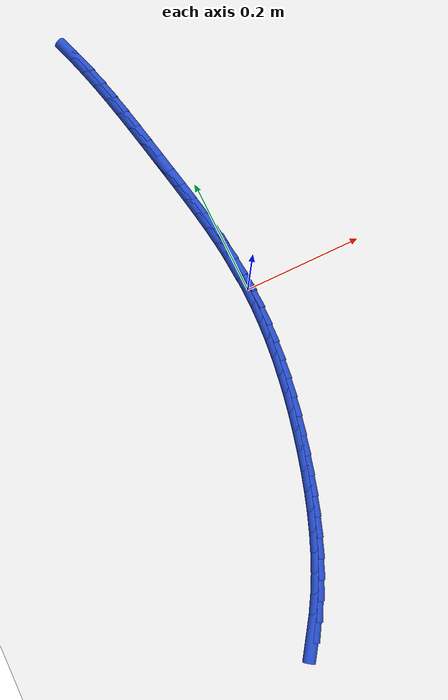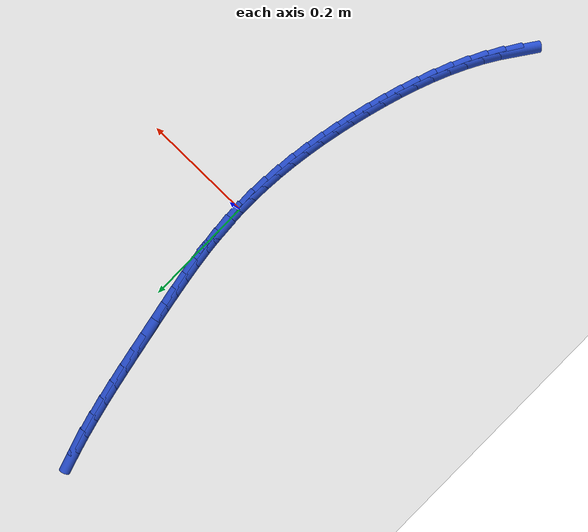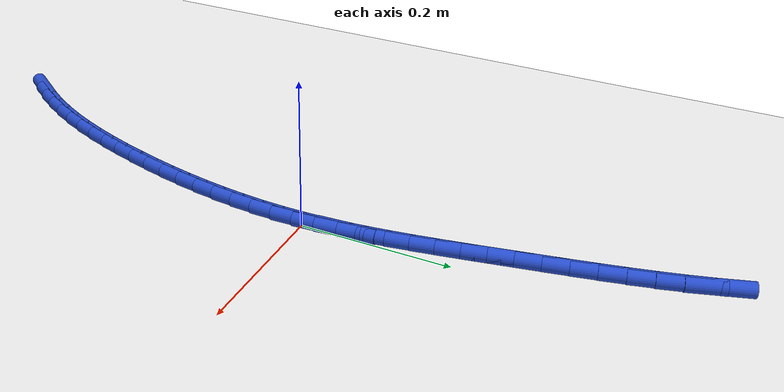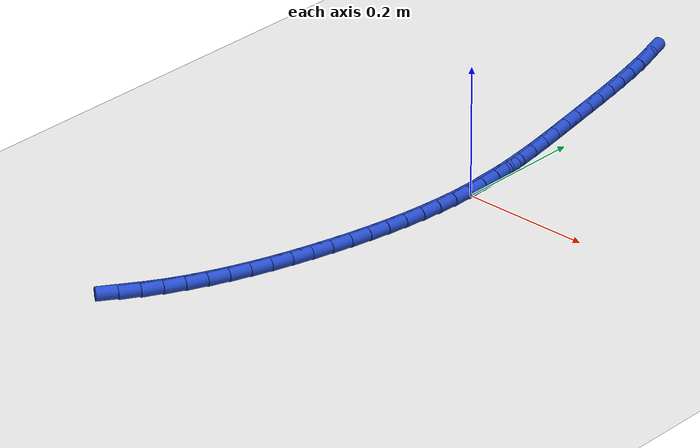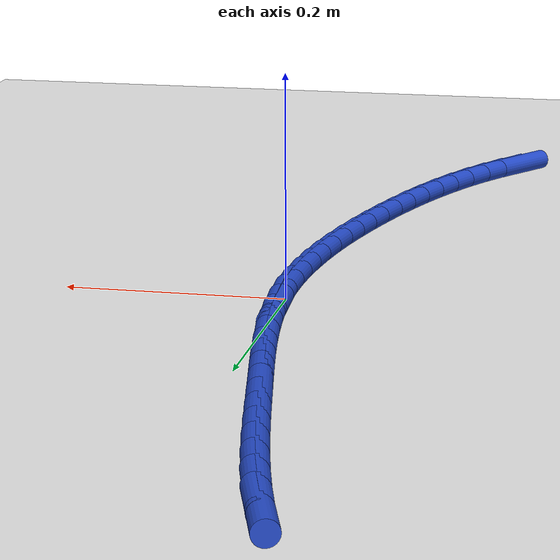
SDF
<sdf version="1.6">
 <world name="default">
  <model name="ground_plane">
   <static>1</static>
   <link name="link">
    <collision name="collision">
     <geometry><plane><normal>0 0 1</normal><size>100 100</size></plane></geometry>
     <surface><friction><ode><mu>100</mu><mu2>50</mu2></ode></friction></surface>
    </collision>
    <visual name="visual">
     <cast_shadows>0</cast_shadows>
     <geometry><plane><normal>0 0 1</normal><size>100 100</size></plane></geometry>
     <material>
      <script><uri>file://media/materials/scripts/gazebo.material</uri><name>Gazebo/WhiteGlow</name></script>
     </material>
    </visual>
   </link>
  </model>
  <model name="line">
   <link name="link_0">
    <pose>8.673617379884035e-18 6.938893903907228e-17 0.01 0 1.57 -1.534834732647551</pose>
    <collision name="collision">
     <geometry><cylinder><radius>0.01</radius><length>0.08</length></cylinder></geometry>
    </collision>
    <visual name="visual">
     <material>
      <script><name>Gazebo/Blue</name><uri>file://media/materials/scripts/gazebo.material</uri></script>
     </material>
     <geometry><cylinder><radius>0.01</radius><length>0.08</length></cylinder></geometry>
    </visual>
   </link>
   <link name="link_1">
    <pose>-0.001085270482683053 0.030165587233258163 0.01 0 1.57 -1.4984836230928305</pose>
    <collision name="collision">
     <geometry><cylinder><radius>0.01</radius><length>0.08</length></cylinder></geometry>
    </collision>
    <visual name="visual">
     <material>
      <script><name>Gazebo/Blue</name><uri>file://media/materials/scripts/gazebo.material</uri></script>
     </material>
     <geometry><cylinder><radius>0.01</radius><length>0.08</length></cylinder></geometry>
    </visual>
   </link>
   <link name="link_2">
    <pose>-0.003266642161739448 0.060278804111640286 0.01 0 1.57 -1.4668365130238021</pose>
    <collision name="collision">
     <geometry><cylinder><radius>0.01</radius><length>0.08</length></cylinder></geometry>
    </collision>
    <visual name="visual">
     <material>
      <script><name>Gazebo/Blue</name><uri>file://media/materials/scripts/gazebo.material</uri></script>
     </material>
     <geometry><cylinder><radius>0.01</radius><length>0.08</length></cylinder></geometry>
    </visual>
   </link>
   <link name="link_3">
    <pose>-0.006407655895817889 0.0903836091083243 0.01 0 1.57 -1.4400223874380829</pose>
    <collision name="collision">
     <geometry><cylinder><radius>0.01</radius><length>0.08</length></cylinder></geometry>
    </collision>
    <visual name="visual">
     <material>
      <script><name>Gazebo/Blue</name><uri>file://media/materials/scripts/gazebo.material</uri></script>
     </material>
     <geometry><cylinder><radius>0.01</radius><length>0.08</length></cylinder></geometry>
    </visual>
   </link>
   <link name="link_4">
    <pose>-0.010371852543567074 0.12052396069648796 0.01 0 1.57 -1.4180916667990704</pose>
    <collision name="collision">
     <geometry><cylinder><radius>0.01</radius><length>0.08</length></cylinder></geometry>
    </collision>
    <visual name="visual">
     <material>
      <script><name>Gazebo/Blue</name><uri>file://media/materials/scripts/gazebo.material</uri></script>
     </material>
     <geometry><cylinder><radius>0.01</radius><length>0.08</length></cylinder></geometry>
    </visual>
   </link>
   <link name="link_5">
    <pose>-0.015022772963635717 0.15074381734930922 0.01 0 1.57 -1.4010349243635654</pose>
    <collision name="collision">
     <geometry><cylinder><radius>0.01</radius><length>0.08</length></cylinder></geometry>
    </collision>
    <visual name="visual">
     <material>
      <script><name>Gazebo/Blue</name><uri>file://media/materials/scripts/gazebo.material</uri></script>
     </material>
     <geometry><cylinder><radius>0.01</radius><length>0.08</length></cylinder></geometry>
    </visual>
   </link>
   <link name="link_6">
    <pose>-0.02022395801467251 0.18108713753996575 0.01 0 1.57 -1.388799495935072</pose>
    <collision name="collision">
     <geometry><cylinder><radius>0.01</radius><length>0.08</length></cylinder></geometry>
    </collision>
    <visual name="visual">
     <material>
      <script><name>Gazebo/Blue</name><uri>file://media/materials/scripts/gazebo.material</uri></script>
     </material>
     <geometry><cylinder><radius>0.01</radius><length>0.08</length></cylinder></geometry>
    </visual>
   </link>
   <link name="link_7">
    <pose>-0.025838948555326157 0.2115978797416354 0.01 0 1.57 -1.3813028904055904</pose>
    <collision name="collision">
     <geometry><cylinder><radius>0.01</radius><length>0.08</length></cylinder></geometry>
    </collision>
    <visual name="visual">
     <material>
      <script><name>Gazebo/Blue</name><uri>file://media/materials/scripts/gazebo.material</uri></script>
     </material>
     <geometry><cylinder><radius>0.01</radius><length>0.08</length></cylinder></geometry>
    </visual>
   </link>
   <link name="link_8">
    <pose>-0.03173128544424536 0.24232000242749607 0.01 0 1.57 -1.37844051123567</pose>
    <collision name="collision">
     <geometry><cylinder><radius>0.01</radius><length>0.08</length></cylinder></geometry>
    </collision>
    <visual name="visual">
     <material>
      <script><name>Gazebo/Blue</name><uri>file://media/materials/scripts/gazebo.material</uri></script>
     </material>
     <geometry><cylinder><radius>0.01</radius><length>0.08</length></cylinder></geometry>
    </visual>
   </link>
   <link name="link_9">
    <pose>-0.037764569140190045 0.2732974254342189 0.01 0 1.57 -1.3781064089530728</pose>
    <collision name="collision">
     <geometry><cylinder><radius>0.01</radius><length>0.08</length></cylinder></geometry>
    </collision>
    <visual name="visual">
     <material>
      <script><name>Gazebo/Blue</name><uri>file://media/materials/scripts/gazebo.material</uri></script>
     </material>
     <geometry><cylinder><radius>0.01</radius><length>0.08</length></cylinder></geometry>
    </visual>
   </link>
   <link name="link_10">
    <pose>-0.043859726055517766 0.3045369063425117 0.01 0 1.57 -1.3745708825909058</pose>
    <collision name="collision">
     <geometry><cylinder><radius>0.01</radius><length>0.08</length></cylinder></geometry>
    </collision>
    <visual name="visual">
     <material>
      <script><name>Gazebo/Blue</name><uri>file://media/materials/scripts/gazebo.material</uri></script>
     </material>
     <geometry><cylinder><radius>0.01</radius><length>0.08</length></cylinder></geometry>
    </visual>
   </link>
   <link name="link_11">
    <pose>-0.050101890725530895 0.33593875279351376 0.01 0 1.57 -1.3668533356605939</pose>
    <collision name="collision">
     <geometry><cylinder><radius>0.01</radius><length>0.08</length></cylinder></geometry>
    </collision>
    <visual name="visual">
     <material>
      <script><name>Gazebo/Blue</name><uri>file://media/materials/scripts/gazebo.material</uri></script>
     </material>
     <geometry><cylinder><radius>0.01</radius><length>0.08</length></cylinder></geometry>
    </visual>
   </link>
   <link name="link_12">
    <pose>-0.05660541382023284 0.36738433270895526 0.01 0 1.57 -1.3549246989037658</pose>
    <collision name="collision">
     <geometry><cylinder><radius>0.01</radius><length>0.08</length></cylinder></geometry>
    </collision>
    <visual name="visual">
     <material>
      <script><name>Gazebo/Blue</name><uri>file://media/materials/scripts/gazebo.material</uri></script>
     </material>
     <geometry><cylinder><radius>0.01</radius><length>0.08</length></cylinder></geometry>
    </visual>
   </link>
   <link name="link_13">
    <pose>-0.06348464600962694 0.398755014010566 0.01 0 1.57 -1.3386880151742515</pose>
    <collision name="collision">
     <geometry><cylinder><radius>0.01</radius><length>0.08</length></cylinder></geometry>
    </collision>
    <visual name="visual">
     <material>
      <script><name>Gazebo/Blue</name><uri>file://media/materials/scripts/gazebo.material</uri></script>
     </material>
     <geometry><cylinder><radius>0.01</radius><length>0.08</length></cylinder></geometry>
    </visual>
   </link>
   <link name="link_14">
    <pose>-0.07085393796371661 0.42993216462007633 0.01 0 1.57 -1.317982526979555</pose>
    <collision name="collision">
     <geometry><cylinder><radius>0.01</radius><length>0.08</length></cylinder></geometry>
    </collision>
    <visual name="visual">
     <material>
      <script><name>Gazebo/Blue</name><uri>file://media/materials/scripts/gazebo.material</uri></script>
     </material>
     <geometry><cylinder><radius>0.01</radius><length>0.08</length></cylinder></geometry>
    </visual>
   </link>
   <link name="link_15">
    <pose>-0.07882764035250522 0.460797152459216 0.01 0 1.57 -1.2925884182194418</pose>
    <collision name="collision">
     <geometry><cylinder><radius>0.01</radius><length>0.08</length></cylinder></geometry>
    </collision>
    <visual name="visual">
     <material>
      <script><name>Gazebo/Blue</name><uri>file://media/materials/scripts/gazebo.material</uri></script>
     </material>
     <geometry><cylinder><radius>0.01</radius><length>0.08</length></cylinder></geometry>
    </visual>
   </link>
   <link name="link_16">
    <pose>-0.08752010384599618 0.49123134544971525 0.01 0 1.57 -1.2622335733288337</pose>
    <collision name="collision">
     <geometry><cylinder><radius>0.01</radius><length>0.08</length></cylinder></geometry>
    </collision>
    <visual name="visual">
     <material>
      <script><name>Gazebo/Blue</name><uri>file://media/materials/scripts/gazebo.material</uri></script>
     </material>
     <geometry><cylinder><radius>0.01</radius><length>0.08</length></cylinder></geometry>
    </visual>
   </link>
   <link name="link_212">
    <pose>-0.1495650993103844 -0.5250136438815262 0.01 0 1.57 0.9620526439924219</pose>
    <collision name="collision">
     <geometry><cylinder><radius>0.01</radius><length>0.08</length></cylinder></geometry>
    </collision>
    <visual name="visual">
     <material>
      <script><name>Gazebo/Blue</name><uri>file://media/materials/scripts/gazebo.material</uri></script>
     </material>
     <geometry><cylinder><radius>0.01</radius><length>0.08</length></cylinder></geometry>
    </visual>
   </link>
   <link name="link_213">
    <pose>-0.1324211389172775 -0.5004186387044965 0.01 0 1.57 1.021650455091309</pose>
    <collision name="collision">
     <geometry><cylinder><radius>0.01</radius><length>0.08</length></cylinder></geometry>
    </collision>
    <visual name="visual">
     <material>
      <script><name>Gazebo/Blue</name><uri>file://media/materials/scripts/gazebo.material</uri></script>
     </material>
     <geometry><cylinder><radius>0.01</radius><length>0.08</length></cylinder></geometry>
    </visual>
   </link>
   <link name="link_214">
    <pose>-0.11666660432296395 -0.47467301705799925 0.01 0 1.57 1.0757212986995404</pose>
    <collision name="collision">
     <geometry><cylinder><radius>0.01</radius><length>0.08</length></cylinder></geometry>
    </collision>
    <visual name="visual">
     <material>
      <script><name>Gazebo/Blue</name><uri>file://media/materials/scripts/gazebo.material</uri></script>
     </material>
     <geometry><cylinder><radius>0.01</radius><length>0.08</length></cylinder></geometry>
    </visual>
   </link>
   <link name="link_215">
    <pose>-0.10221492141497714 -0.44790691315878967 0.01 0 1.57 1.1244217715626683</pose>
    <collision name="collision">
     <geometry><cylinder><radius>0.01</radius><length>0.08</length></cylinder></geometry>
    </collision>
    <visual name="visual">
     <material>
      <script><name>Gazebo/Blue</name><uri>file://media/materials/scripts/gazebo.material</uri></script>
     </material>
     <geometry><cylinder><radius>0.01</radius><length>0.08</length></cylinder></geometry>
    </visual>
   </link>
   <link name="link_216">
    <pose>-0.08897904447951431 -0.42025101383281327 0.01 0 1.57 1.1680097731707666</pose>
    <collision name="collision">
     <geometry><cylinder><radius>0.01</radius><length>0.08</length></cylinder></geometry>
    </collision>
    <visual name="visual">
     <material>
      <script><name>Gazebo/Blue</name><uri>file://media/materials/scripts/gazebo.material</uri></script>
     </material>
     <geometry><cylinder><radius>0.01</radius><length>0.08</length></cylinder></geometry>
    </visual>
   </link>
   <link name="link_217">
    <pose>-0.07687192780277173 -0.39183600590601336 0.01 0 1.57 1.2067801339698758</pose>
    <collision name="collision">
     <geometry><cylinder><radius>0.01</radius><length>0.08</length></cylinder></geometry>
    </collision>
    <visual name="visual">
     <material>
      <script><name>Gazebo/Blue</name><uri>file://media/materials/scripts/gazebo.material</uri></script>
     </material>
     <geometry><cylinder><radius>0.01</radius><length>0.08</length></cylinder></geometry>
    </visual>
   </link>
   <link name="link_218">
    <pose>-0.0658065256709459 -0.3627925762043341 0.01 0 1.57 1.2410341805814802</pose>
    <collision name="collision">
     <geometry><cylinder><radius>0.01</radius><length>0.08</length></cylinder></geometry>
    </collision>
    <visual name="visual">
     <material>
      <script><name>Gazebo/Blue</name><uri>file://media/materials/scripts/gazebo.material</uri></script>
     </material>
     <geometry><cylinder><radius>0.01</radius><length>0.08</length></cylinder></geometry>
    </visual>
   </link>
   <link name="link_219">
    <pose>-0.05569579237023318 -0.3332514115537188 0.01 0 1.57 1.2710582998950255</pose>
    <collision name="collision">
     <geometry><cylinder><radius>0.01</radius><length>0.08</length></cylinder></geometry>
    </collision>
    <visual name="visual">
     <material>
      <script><name>Gazebo/Blue</name><uri>file://media/materials/scripts/gazebo.material</uri></script>
     </material>
     <geometry><cylinder><radius>0.01</radius><length>0.08</length></cylinder></geometry>
    </visual>
   </link>
   <link name="link_220">
    <pose>-0.04645268218683059 -0.3033431987801129 0.01 0 1.57 1.2971093933990892</pose>
    <collision name="collision">
     <geometry><cylinder><radius>0.01</radius><length>0.08</length></cylinder></geometry>
    </collision>
    <visual name="visual">
     <material>
      <script><name>Gazebo/Blue</name><uri>file://media/materials/scripts/gazebo.material</uri></script>
     </material>
     <geometry><cylinder><radius>0.01</radius><length>0.08</length></cylinder></geometry>
    </visual>
   </link>
   <link name="link_221">
    <pose>-0.037990149406934466 -0.2731986247094599 0.01 0 1.57 1.3200441780043786</pose>
    <collision name="collision">
     <geometry><cylinder><radius>0.01</radius><length>0.08</length></cylinder></geometry>
    </collision>
    <visual name="visual">
     <material>
      <script><name>Gazebo/Blue</name><uri>file://media/materials/scripts/gazebo.material</uri></script>
     </material>
     <geometry><cylinder><radius>0.01</radius><length>0.08</length></cylinder></geometry>
    </visual>
   </link>
   <link name="link_222">
    <pose>-0.030238481452552635 -0.24293560767840794 0.01 0 1.57 1.343601901135823</pose>
    <collision name="collision">
     <geometry><cylinder><radius>0.01</radius><length>0.08</length></cylinder></geometry>
    </collision>
    <visual name="visual">
     <material>
      <script><name>Gazebo/Blue</name><uri>file://media/materials/scripts/gazebo.material</uri></script>
     </material>
     <geometry><cylinder><radius>0.01</radius><length>0.08</length></cylinder></geometry>
    </visual>
   </link>
   <link name="link_223">
    <pose>-0.023225385946052963 -0.21260030123741494 0.01 0 1.57 1.369116556792134</pose>
    <collision name="collision">
     <geometry><cylinder><radius>0.01</radius><length>0.08</length></cylinder></geometry>
    </collision>
    <visual name="visual">
     <material>
      <script><name>Gazebo/Blue</name><uri>file://media/materials/scripts/gazebo.material</uri></script>
     </material>
     <geometry><cylinder><radius>0.01</radius><length>0.08</length></cylinder></geometry>
    </visual>
   </link>
   <link name="link_224">
    <pose>-0.017012580434435785 -0.1822138054576777 0.01 0 1.57 1.3966622073536135</pose>
    <collision name="collision">
     <geometry><cylinder><radius>0.01</radius><length>0.08</length></cylinder></geometry>
    </collision>
    <visual name="visual">
     <material>
      <script><name>Gazebo/Blue</name><uri>file://media/materials/scripts/gazebo.material</uri></script>
     </material>
     <geometry><cylinder><radius>0.01</radius><length>0.08</length></cylinder></geometry>
    </visual>
   </link>
   <link name="link_225">
    <pose>-0.011661817823821275 -0.15179719436302397 0.01 0 1.57 1.4263091293355945</pose>
    <collision name="collision">
     <geometry><cylinder><radius>0.01</radius><length>0.08</length></cylinder></geometry>
    </collision>
    <visual name="visual">
     <material>
      <script><name>Gazebo/Blue</name><uri>file://media/materials/scripts/gazebo.material</uri></script>
     </material>
     <geometry><cylinder><radius>0.01</radius><length>0.08</length></cylinder></geometry>
    </visual>
   </link>
   <link name="link_226">
    <pose>-0.007234851020329745 -0.12137154197728209 0.01 0 1.57 1.4581217353605969</pose>
    <collision name="collision">
     <geometry><cylinder><radius>0.01</radius><length>0.08</length></cylinder></geometry>
    </collision>
    <visual name="visual">
     <material>
      <script><name>Gazebo/Blue</name><uri>file://media/materials/scripts/gazebo.material</uri></script>
     </material>
     <geometry><cylinder><radius>0.01</radius><length>0.08</length></cylinder></geometry>
    </visual>
   </link>
   <link name="link_227">
    <pose>-0.0037934329300815146 -0.09095792232428038 0.01 0 1.57 1.49215450324344</pose>
    <collision name="collision">
     <geometry><cylinder><radius>0.01</radius><length>0.08</length></cylinder></geometry>
    </collision>
    <visual name="visual">
     <material>
      <script><name>Gazebo/Blue</name><uri>file://media/materials/scripts/gazebo.material</uri></script>
     </material>
     <geometry><cylinder><radius>0.01</radius><length>0.08</length></cylinder></geometry>
    </visual>
   </link>
   <link name="link_228">
    <pose>-0.0013993164591968809 -0.06057740942784654 0.01 0 1.57 1.5284472020188247</pose>
    <collision name="collision">
     <geometry><cylinder><radius>0.01</radius><length>0.08</length></cylinder></geometry>
    </collision>
    <visual name="visual">
     <material>
      <script><name>Gazebo/Blue</name><uri>file://media/materials/scripts/gazebo.material</uri></script>
     </material>
     <geometry><cylinder><radius>0.01</radius><length>0.08</length></cylinder></geometry>
    </visual>
   </link>
   <link name="link_229">
    <pose>-0.0001142545137962879 -0.030251077311810457 0.01 0 1.57 1.5670194705411011</pose>
    <collision name="collision">
     <geometry><cylinder><radius>0.01</radius><length>0.08</length></cylinder></geometry>
    </collision>
    <visual name="visual">
     <material>
      <script><name>Gazebo/Blue</name><uri>file://media/materials/scripts/gazebo.material</uri></script>
     </material>
     <geometry><cylinder><radius>0.01</radius><length>0.08</length></cylinder></geometry>
    </visual>
   </link>
   <link name="link_230">
    <pose>1.1275702593849246e-17 2.220446049250313e-16 0.01 0 1.57 -1.533727751542623</pose>
    <collision name="collision">
     <geometry><cylinder><radius>0.01</radius><length>0.08</length></cylinder></geometry>
    </collision>
    <visual name="visual">
     <material>
      <script><name>Gazebo/Blue</name><uri>file://media/materials/scripts/gazebo.material</uri></script>
     </material>
     <geometry><cylinder><radius>0.01</radius><length>0.08</length></cylinder></geometry>
    </visual>
   </link>
   <link name="link_231">
    <pose>-0.0011183058239283145 0.030154748483757113 0.01 0 1.57 -1.490647740231055</pose>
    <collision name="collision">
     <geometry><cylinder><radius>0.01</radius><length>0.08</length></cylinder></geometry>
    </collision>
    <visual name="visual">
     <material>
      <script><name>Gazebo/Blue</name><uri>file://media/materials/scripts/gazebo.material</uri></script>
     </material>
     <geometry><cylinder><radius>0.01</radius><length>0.08</length></cylinder></geometry>
    </visual>
   </link>
   <link name="link_232">
    <pose>-0.0035309248917015906 0.06019209411563183 0.01 0 1.57 -1.5122025332166136</pose>
    <collision name="collision">
     <geometry><cylinder><radius>0.01</radius><length>0.08</length></cylinder></geometry>
    </collision>
    <visual name="visual">
     <material>
      <script><name>Gazebo/Blue</name><uri>file://media/materials/scripts/gazebo.material</uri></script>
     </material>
     <geometry><cylinder><radius>0.01</radius><length>0.08</length></cylinder></geometry>
    </visual>
   </link>
  </model>
 </world>
</sdf>
